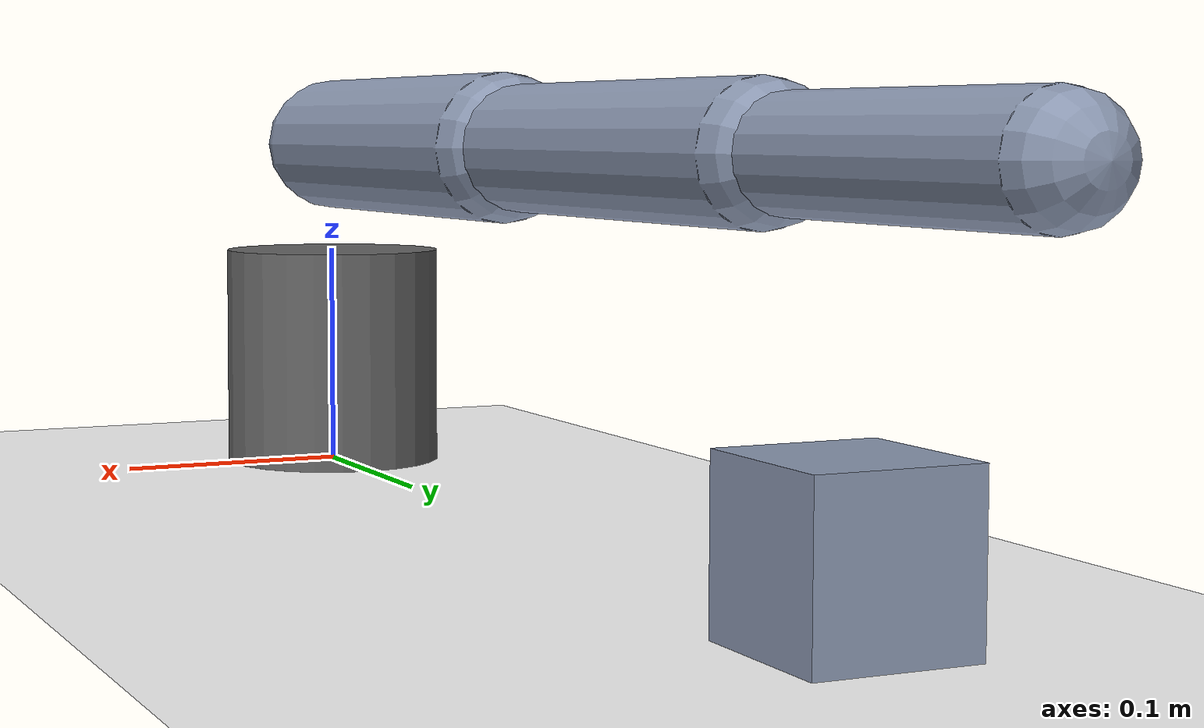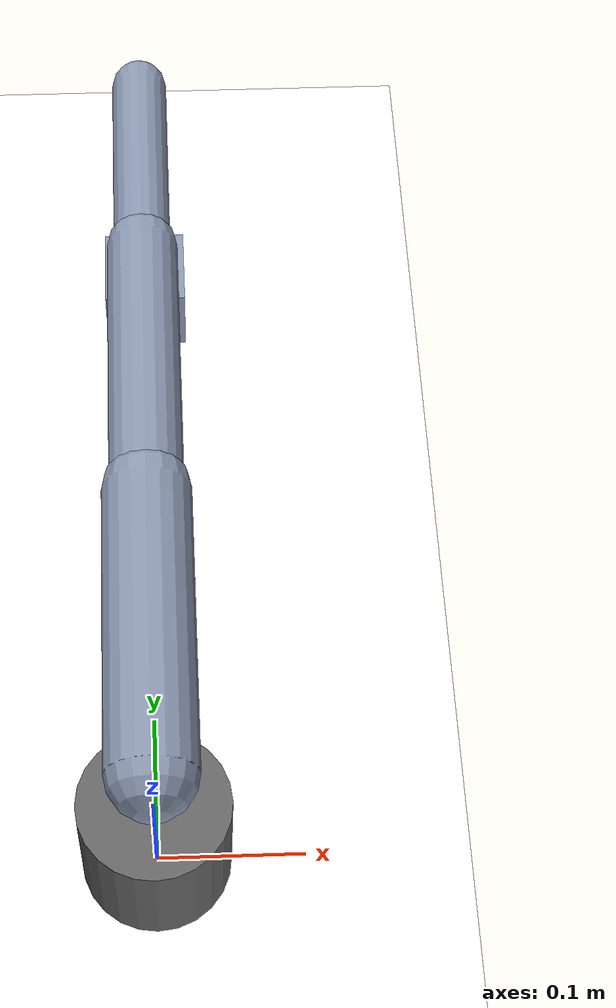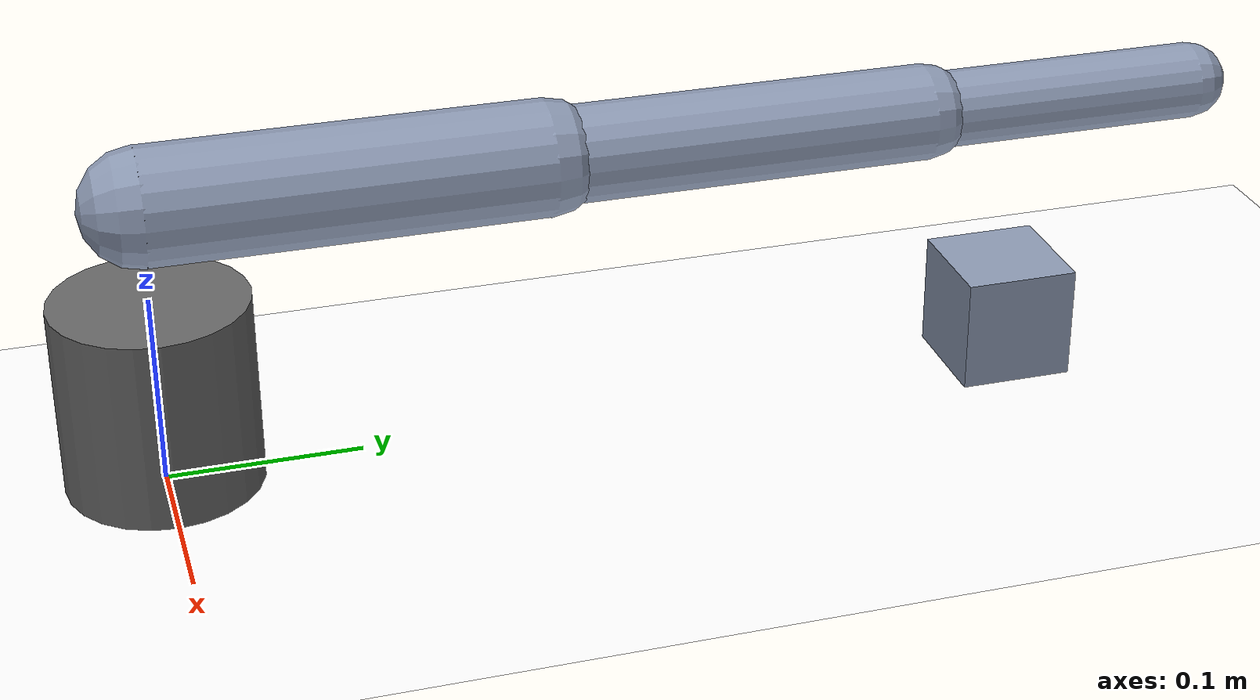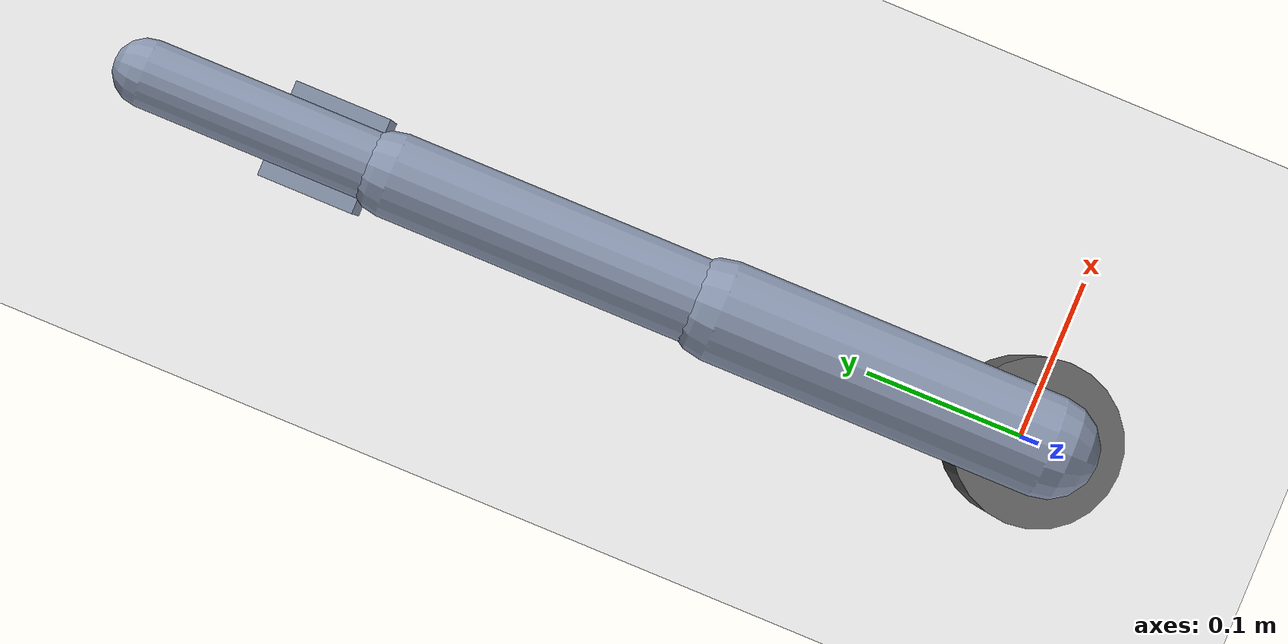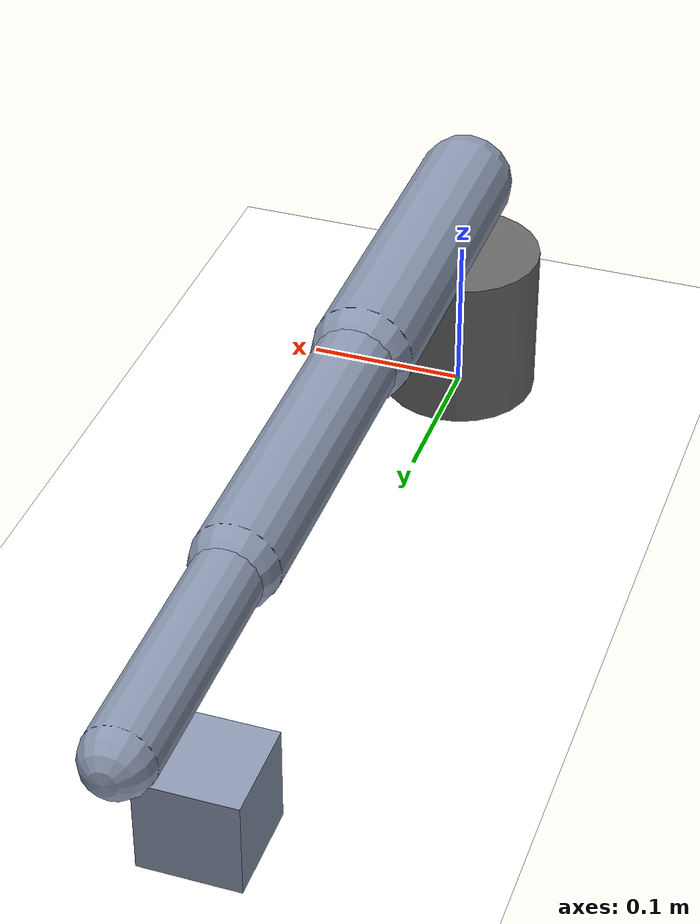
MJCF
<mujoco model="manipulator_scene">
  <!-- Basic compiler/options -->
  <compiler angle="degree" coordinate="local" inertiafromgeom="true" />
  <option timestep="0.002" gravity="0 0 -9.81" integrator="RK4" />

  <default>
    <joint damping="1" armature="0.01" limited="true" />
    <geom type="capsule" rgba="0.55 0.6 0.7 1" friction="0.8 0.1 0.1" condim="4" density="1200" />
  </default>

  <asset>
    <texture name="grid" type="2d" builtin="checker" width="512" height="512"
             rgb1="0.9 0.9 0.9" rgb2="0.8 0.8 0.8" />
    <material name="floor_mat" texture="grid" texrepeat="8 8" reflectance="0.1" />
    <material name="arm_mat" rgba="0.35 0.45 0.85 1" />
    <material name="block_mat" rgba="0.85 0.25 0.25 1" />
  </asset>

  <worldbody>
    <!-- Lighting and ground -->
    <light name="sun" pos="1 -1 2" dir="-1 1 -2" diffuse="0.8 0.8 0.8" specular="0.3 0.3 0.3" />
    <geom name="floor" type="plane" size="5 5 0.1" material="floor_mat" rgba="1 1 1 1" />

    <!-- Simple 3-DOF planar manipulator mounted at origin -->
    <body name="base" pos="0 0 0.05">
      <!-- Decorative base pillar -->
      <geom name="base_pillar" type="cylinder" size="0.05 0.05" rgba="0.4 0.4 0.4 1" />

      <!-- Joint 1: base yaw around +z -->
      <joint name="joint_base_yaw" type="hinge" axis="0 0 1" range="-180 180" />

      <!-- Link 1 -->
      <body name="link1" pos="0 0 0.10">
        <joint name="joint_shoulder" type="hinge" axis="1 0 0" range="-90 90" />
        <!-- Capsule along +y local axis -->
        <geom name="link1_geom" material="arm_mat" fromto="0 0 0  0 0.20 0" size="0.03" />

        <!-- Link 2 -->
        <body name="link2" pos="0 0.20 0">
          <joint name="joint_elbow" type="hinge" axis="1 0 0" range="-120 120" />
          <geom name="link2_geom" material="arm_mat" fromto="0 0 0  0 0.20 0" size="0.025" />

          <!-- Link 3 / wrist -->
          <body name="link3" pos="0 0.20 0">
            <joint name="joint_wrist" type="hinge" axis="0 0 1" range="-180 180" />
            <geom name="link3_geom" material="arm_mat" fromto="0 0 0  0 0.15 0" size="0.02" />

            <!-- End-effector site -->
            <site name="ee_site" pos="0 0.15 0" size="0.01" rgba="0.1 0.9 0.1 1" />

            <!-- Onboard camera mounted near the wrist, looking along +y toward the block -->
            <!-- zaxis defines the camera's forward (optical) axis; xyaxes completes an orthonormal frame -->
            <camera name="ee_cam" pos="0 0.14 0.05" zaxis="0 1 0" fovy="60"/>

          </body>

        </body>
      </body>
    </body>

    <!-- Target block on the table in front of the arm (along +y) -->
    <body name="block_body" pos="0 0.45 0.03">
      <geom name="block" type="box" size="0.03 0.03 0.03" material="block_mat" />
    </body>

    <!-- Global camera positioned above the scene looking down -->
    <camera name="global_cam" pos="0 0.2 1.5" zaxis="0 0 -1" fovy="45" />
  </worldbody>

  <!-- Simple motors for each joint (range-limited by the joint ranges) -->
  <actuator>
    <motor name="act_base" joint="joint_base_yaw" gear="100" ctrlrange="-1 1" />
    <motor name="act_shoulder" joint="joint_shoulder" gear="100" ctrlrange="-1 1" />
    <motor name="act_elbow" joint="joint_elbow" gear="100" ctrlrange="-1 1" />
    <motor name="act_wrist" joint="joint_wrist" gear="50" ctrlrange="-1 1" />
  </actuator>

  <!-- Optional: a convenient named keyframe for a neutral pose -->
  <keyframe>
    <key name="home" qpos="0 0 0 0" />
  </keyframe>
</mujoco>
